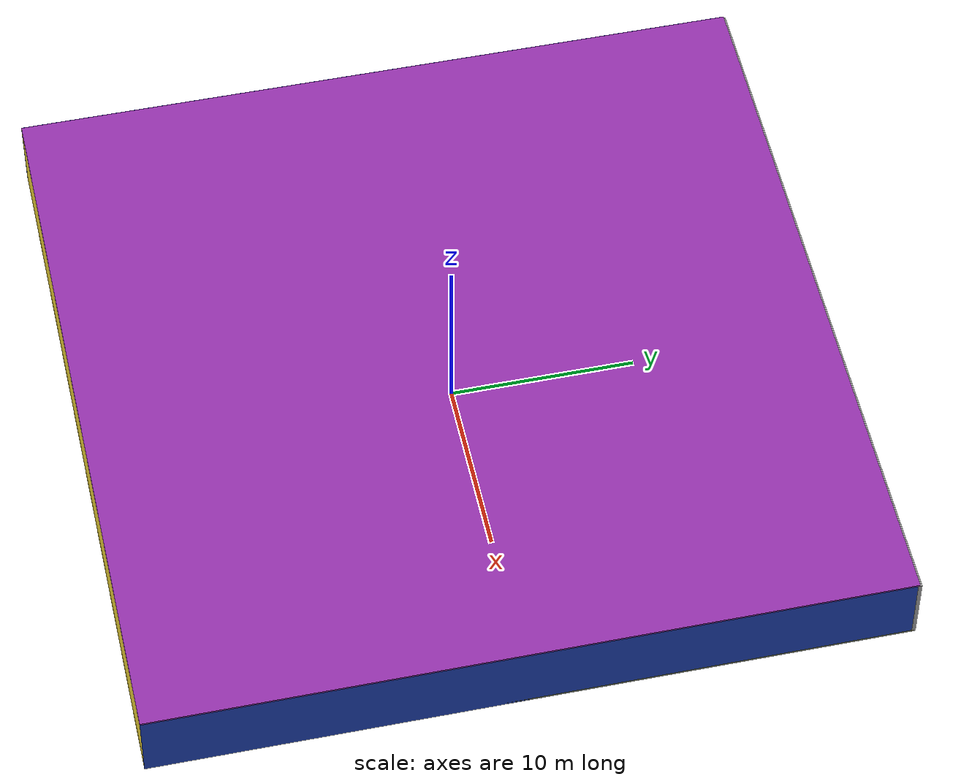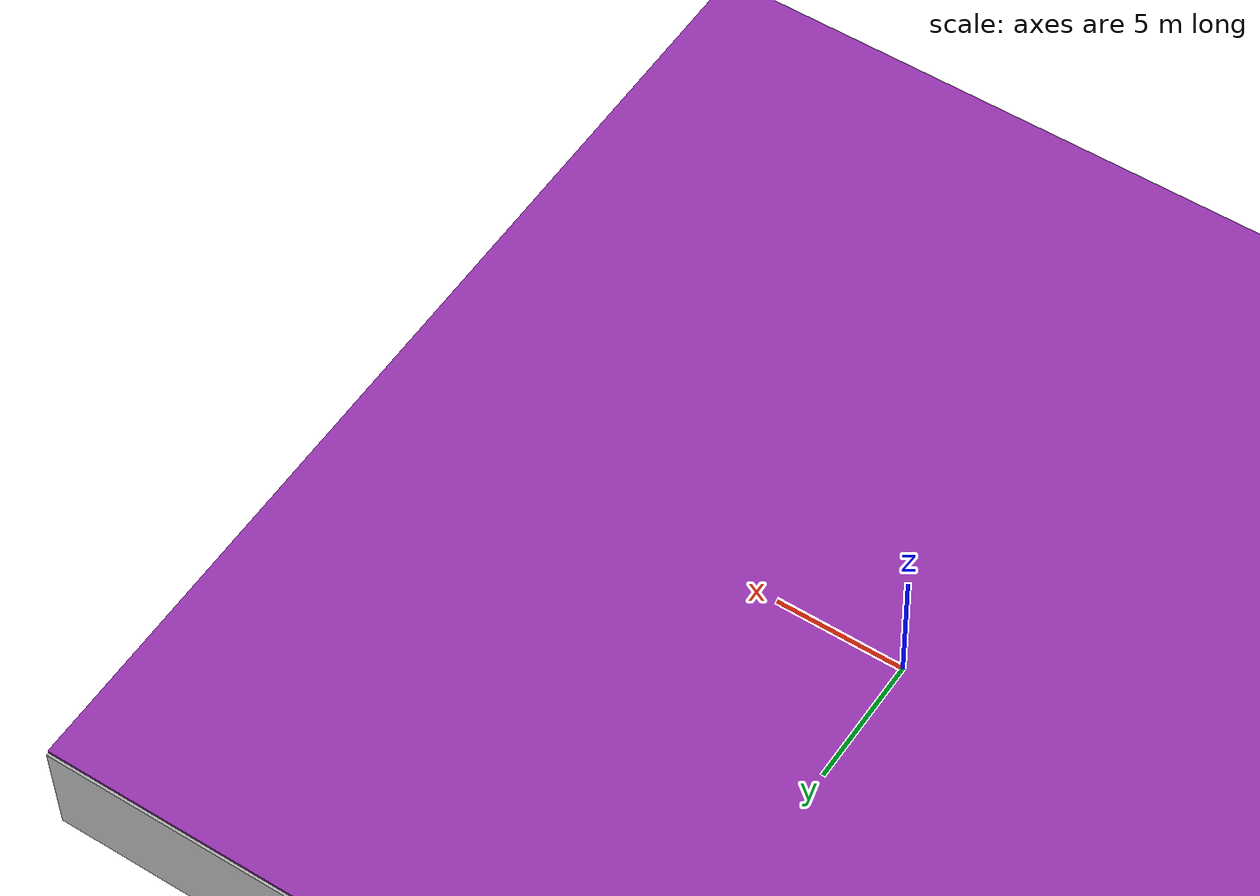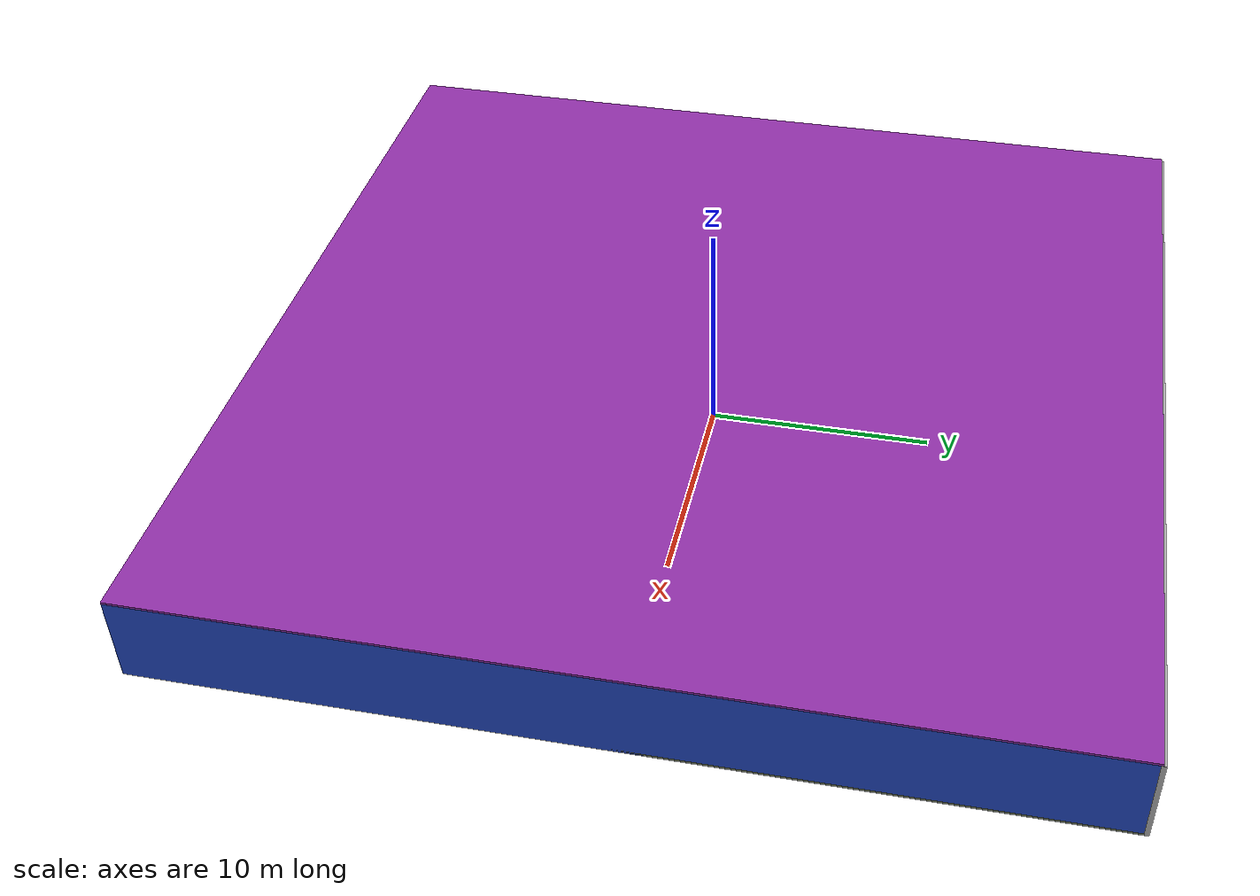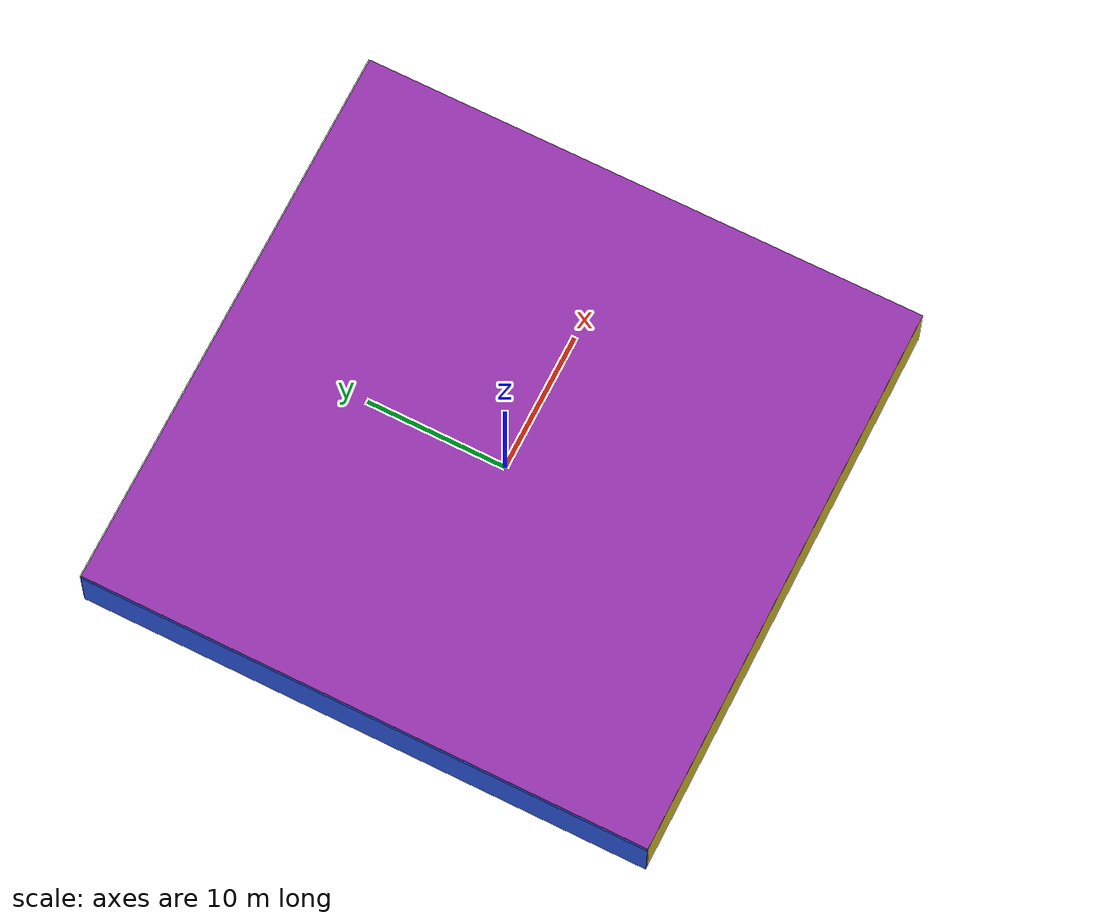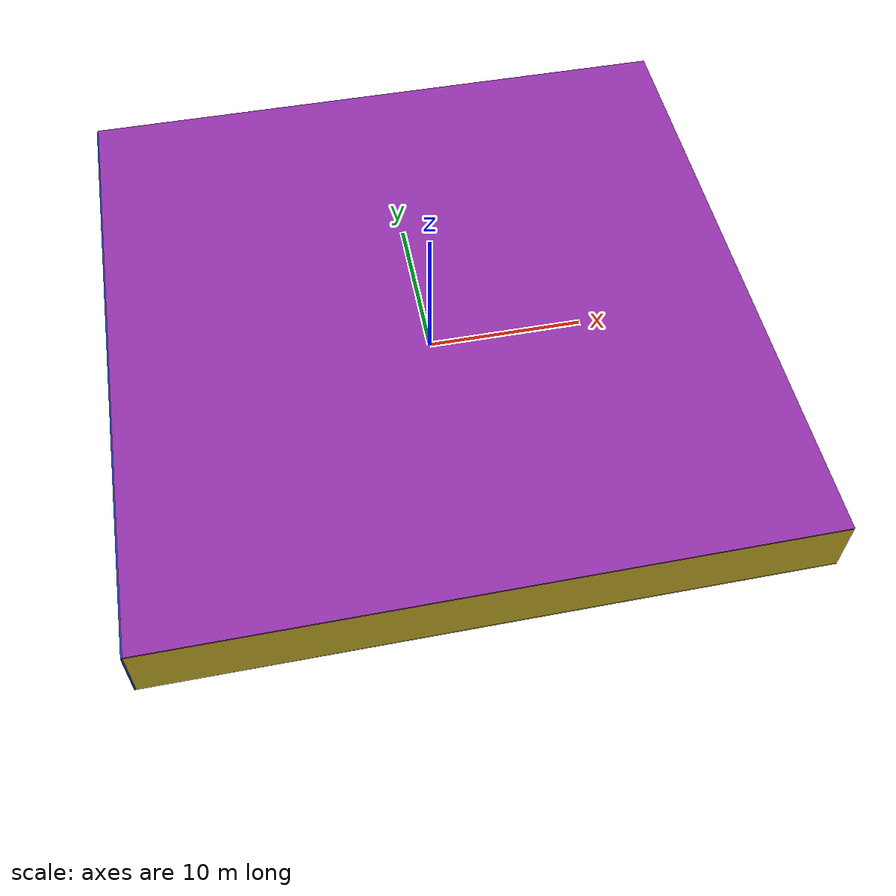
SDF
<sdf version="1.4">
 <world name="default">
  <physics type="ode">
   <max_step_size>0.001</max_step_size>
   <real_time_factor>1</real_time_factor>
   <real_time_update_rate>1000</real_time_update_rate>
   <gravity>0 0 -9.8</gravity>
  </physics>
  <scene><ambient>0.4 0.4 0.4 1</ambient><background>0.7 0.7 0.7 1</background><shadows>1</shadows></scene>
  <model name="Surrounding">
   <static>1</static>
   <link name="Ceiling">
    <collision name="Ceiling_Collision"><geometry><box><size>40 40 0.1</size></box></geometry></collision>
    <visual name="Ceiling_Visual">
     <geometry><box><size>40 40 0.1</size></box></geometry>
     <material>
      <script><uri>file://media/materials/scripts/gazebo.material</uri><name>Gazebo/Purple</name></script>
     </material>
    </visual>
    <pose>0 0 4.05 0 0 0</pose>
   </link>
   <link name="Wall_South">
    <collision name="Wall_South_Collision">
     <geometry><box><size>40 0 4</size></box></geometry>
     <pose>0 0 2 0 -0 0</pose>
    </collision>
    <visual name="Wall_South_Visual">
     <pose>0 0 2 0 -0 0</pose>
     <geometry><box><size>40 0 4</size></box></geometry>
     <material>
      <script><uri>file://media/materials/scripts/gazebo.material</uri><name>Gazebo/ZincYellow</name></script>
     </material>
    </visual>
    <velocity_decay><linear>0</linear><angular>0</angular></velocity_decay>
    <pose>0 -20 0 0 -0 0</pose>
   </link>
   <link name="Wall_East">
    <collision name="Wall_21_Collision">
     <geometry><box><size>40 0 4</size></box></geometry>
     <pose>0 0 2 0 -0 0</pose>
    </collision>
    <visual name="Wall_21_Visual">
     <pose>0 0 2 0 -0 0</pose>
     <geometry><box><size>40 0 4</size></box></geometry>
     <material>
      <script><uri>file://media/materials/scripts/gazebo.material</uri><name>Gazebo/BlueLaser</name></script>
     </material>
    </visual>
    <velocity_decay><linear>0</linear><angular>0</angular></velocity_decay>
    <pose>20 0 0 0 -0 1.5708</pose>
   </link>
   <link name="Wall_North">
    <collision name="Wall_22_Collision">
     <geometry><box><size>40 0.2 4</size></box></geometry>
     <pose>0 0 2 0 -0 0</pose>
    </collision>
    <visual name="Wall_22_Visual">
     <pose>0 0 2 0 -0 0</pose>
     <geometry><box><size>40 0.2 4</size></box></geometry>
     <material>
      <script><uri>file://media/materials/scripts/gazebo.material</uri><name>Gazebo/LightOn</name></script>
     </material>
    </visual>
    <velocity_decay><linear>0</linear><angular>0</angular></velocity_decay>
    <pose>0 20 0 0 -0 0</pose>
   </link>
   <link name="Wall_West">
    <collision name="Wall_23_Collision">
     <geometry><box><size>40 0.2 4</size></box></geometry>
     <pose>0 0 2 0 -0 0</pose>
    </collision>
    <visual name="Wall_23_Visual">
     <pose>0 0 2 0 -0 0</pose>
     <geometry><box><size>40 0.2 4</size></box></geometry>
     <material>
      <script><uri>file://media/materials/scripts/gazebo.material</uri><name>Gazebo/BlueLaser</name></script>
     </material>
    </visual>
    <velocity_decay><linear>0</linear><angular>0</angular></velocity_decay>
    <pose>-20 0 0 0 0 -1.5708</pose>
   </link>
   <link name="Ground_link">
    <collision name="collision">
     <pose>0 0 .05 0 -0 0</pose>
     <geometry><box><size>40 40 0.1</size></box></geometry>
    </collision>
    <visual name="visual">
     <pose>0 0 .05 0 -0 0</pose>
     <geometry><box><size>40 40 0.1</size></box></geometry>
     <material>
      <script>
       <uri>file://media/materials/scripts/gazebo.material</uri>
       <name>Gazebo/YellowTransparent</name>
      </script>
     </material>
    </visual>
   </link>
   <static>1</static>
  </model>
  <spherical_coordinates>
   <surface_model>EARTH_WGS84</surface_model>
   <latitude_deg>0</latitude_deg>
   <longitude_deg>0</longitude_deg>
   <elevation>0</elevation>
   <heading_deg>0</heading_deg>
  </spherical_coordinates>
  <light name="lightball_0" type="diffuse">
   <diffuse>0.8 0.8 0.8 1</diffuse>
   <specular>0.2 0.2 0.2 1</specular>
   <attenuation>
    <range>100</range>
    <constant>0.7</constant>
    <linear>0.01</linear>
    <quadratic>0.001</quadratic>
   </attenuation>
   <direction>-0.5 0.1 -0.9</direction>
   <pose>-15.8205296285 7.40302170666 0.757369584554 0 0 0</pose>
  </light>
  <light name="lightball_1" type="diffuse">
   <diffuse>0.8 0.8 0.8 1</diffuse>
   <specular>0.2 0.2 0.2 1</specular>
   <attenuation>
    <range>100</range>
    <constant>0.7</constant>
    <linear>0.01</linear>
    <quadratic>0.001</quadratic>
   </attenuation>
   <direction>-0.5 0.1 -0.9</direction>
   <pose>-1.97834517789 -16.0557437069 2.88319701101 0 0 0</pose>
  </light>
  <light name="lightball_2" type="diffuse">
   <diffuse>0.8 0.8 0.8 1</diffuse>
   <specular>0.2 0.2 0.2 1</specular>
   <attenuation>
    <range>100</range>
    <constant>0.7</constant>
    <linear>0.01</linear>
    <quadratic>0.001</quadratic>
   </attenuation>
   <direction>-0.5 0.1 -0.9</direction>
   <pose>-14.4424021543 -14.4499914657 1.65151697792 0 0 0</pose>
  </light>
  <light name="lightball_3" type="diffuse">
   <diffuse>0.8 0.8 0.8 1</diffuse>
   <specular>0.2 0.2 0.2 1</specular>
   <attenuation>
    <range>100</range>
    <constant>0.7</constant>
    <linear>0.01</linear>
    <quadratic>0.001</quadratic>
   </attenuation>
   <direction>-0.5 0.1 -0.9</direction>
   <pose>2.07371877605 -18.1946482795 1.10240455037 0 0 0</pose>
  </light>
  <light name="lightball_4" type="diffuse">
   <diffuse>0.8 0.8 0.8 1</diffuse>
   <specular>0.2 0.2 0.2 1</specular>
   <attenuation>
    <range>100</range>
    <constant>0.7</constant>
    <linear>0.01</linear>
    <quadratic>0.001</quadratic>
   </attenuation>
   <direction>-0.5 0.1 -0.9</direction>
   <pose>-16.0106987629 16.9088194048 3.81535931157 0 0 0</pose>
  </light>
  <light name="lightball_5" type="diffuse">
   <diffuse>0.8 0.8 0.8 1</diffuse>
   <specular>0.2 0.2 0.2 1</specular>
   <attenuation>
    <range>100</range>
    <constant>0.7</constant>
    <linear>0.01</linear>
    <quadratic>0.001</quadratic>
   </attenuation>
   <direction>-0.5 0.1 -0.9</direction>
   <pose>-13.7945715252 11.71236386 3.49228452634 0 0 0</pose>
  </light>
  <light name="lightball_6" type="diffuse">
   <diffuse>0.8 0.8 0.8 1</diffuse>
   <specular>0.2 0.2 0.2 1</specular>
   <attenuation>
    <range>100</range>
    <constant>0.7</constant>
    <linear>0.01</linear>
    <quadratic>0.001</quadratic>
   </attenuation>
   <direction>-0.5 0.1 -0.9</direction>
   <pose>2.67752669221 -3.95009534975 0.846644743017 0 0 0</pose>
  </light>
  <light name="lightball_7" type="diffuse">
   <diffuse>0.8 0.8 0.8 1</diffuse>
   <specular>0.2 0.2 0.2 1</specular>
   <attenuation>
    <range>100</range>
    <constant>0.7</constant>
    <linear>0.01</linear>
    <quadratic>0.001</quadratic>
   </attenuation>
   <direction>-0.5 0.1 -0.9</direction>
   <pose>-2.86410784038 6.77080824895 1.07418452153 0 0 0</pose>
  </light>
  <light name="lightball_8" type="diffuse">
   <diffuse>0.8 0.8 0.8 1</diffuse>
   <specular>0.2 0.2 0.2 1</specular>
   <attenuation>
    <range>100</range>
    <constant>0.7</constant>
    <linear>0.01</linear>
    <quadratic>0.001</quadratic>
   </attenuation>
   <direction>-0.5 0.1 -0.9</direction>
   <pose>1.04417290828 -4.42515530162 2.93966520703 0 0 0</pose>
  </light>
  <light name="lightball_9" type="diffuse">
   <diffuse>0.8 0.8 0.8 1</diffuse>
   <specular>0.2 0.2 0.2 1</specular>
   <attenuation>
    <range>100</range>
    <constant>0.7</constant>
    <linear>0.01</linear>
    <quadratic>0.001</quadratic>
   </attenuation>
   <direction>-0.5 0.1 -0.9</direction>
   <pose>10.4236885915 -1.26468183879 1.26072619675 0 0 0</pose>
  </light>
  <light name="lightball_10" type="diffuse">
   <diffuse>0.8 0.8 0.8 1</diffuse>
   <specular>0.2 0.2 0.2 1</specular>
   <attenuation>
    <range>100</range>
    <constant>0.7</constant>
    <linear>0.01</linear>
    <quadratic>0.001</quadratic>
   </attenuation>
   <direction>-0.5 0.1 -0.9</direction>
   <pose>19.2813140259 0.742159672836 1.25641659787 0 0 0</pose>
  </light>
  <include><uri>model://cabinet</uri><pose>-17.6906147061 -16.8979719614 0 0 0 0.942663287437</pose></include>
  <include><uri>model://cabinet</uri><pose>-16.7983671622 -12.3515671711 0 0 0 1.95574649644</pose></include>
  <include><uri>model://cabinet</uri><pose>-17.4840316533 -5.83443377669 0 0 0 2.57910044063</pose></include>
  <include>
   <uri>model://construction_cone</uri>
   <pose>-16.3841807273 9.18551328219 0 0 0 0.81823850054</pose>
  </include>
  <include><uri>model://cabinet</uri><pose>-13.5799885665 -7.32660387017 0 0 0 2.61772977733</pose></include>
  <include><uri>model://table</uri><pose>-13.3985855516 7.0379470766 0 0 0 1.15747402776</pose></include>
  <include>
   <uri>model://robocup_3Dsim_goal</uri>
   <pose>-10.8522150466 1.47142371922 0 0 0 2.6643015663</pose>
  </include>
  <include><uri>model://table</uri><pose>-10.3748936283 7.55082273279 0 0 0 0.607973010125</pose></include>
  <include>
   <uri>model://construction_cone</uri>
   <pose>-8.00571311973 -13.7141307986 0 0 0 0.522702292823</pose>
  </include>
  <include><uri>model://table</uri><pose>-8.3660652554 -10.9718075077 0 0 0 2.76123110088</pose></include>
  <include><uri>model://cabinet</uri><pose>-6.58140440371 -10.9055042464 0 0 0 3.05827100831</pose></include>
  <include>
   <uri>model://robocup_3Dsim_goal</uri>
   <pose>-6.05554339621 12.5567247095 0 0 0 0.511349018198</pose>
  </include>
  <include>
   <uri>model://construction_cone</uri>
   <pose>-3.00386693438 -1.49687291046 0 0 0 2.75297242035</pose>
  </include>
  <include><uri>model://cabinet</uri><pose>-2.99383694981 13.4962796692 0 0 0 2.03563515937</pose></include>
  <include><uri>model://table</uri><pose>-1.56858018177 17.360543808 0 0 0 0.704669956197</pose></include>
  <include><uri>model://cabinet</uri><pose>1.41574608167 17.3413924115 0 0 0 0.600899091688</pose></include>
  <include><uri>model://table</uri><pose>2.71275204493 -12.0054712692 0 0 0 1.54433823152</pose></include>
  <include><uri>model://table</uri><pose>3.89675576112 3.6164187541 0 0 0 1.77814168407</pose></include>
  <include>
   <uri>model://construction_cone</uri>
   <pose>5.42516744258 -15.2048105154 0 0 0 1.43995751316</pose>
  </include>
  <include>
   <uri>model://robocup_3Dsim_goal</uri>
   <pose>5.5050203172 -10.8042762699 0 0 0 0.798086020673</pose>
  </include>
  <include><uri>model://table</uri><pose>7.54646288372 9.03468675274 0 0 0 0.766225353156</pose></include>
  <include>
   <uri>model://construction_cone</uri>
   <pose>10.632898201 -12.054757003 0 0 0 0.402564074473</pose>
  </include>
  <include>
   <uri>model://robocup_3Dsim_goal</uri>
   <pose>9.51451187725 -2.60023385847 0 0 0 0.392163031181</pose>
  </include>
  <include><uri>model://cabinet</uri><pose>10.5170679109 7.60908174507 0 0 0 2.57366828434</pose></include>
  <include><uri>model://table</uri><pose>12.5731596288 -6.36863099903 0 0 0 1.34115179311</pose></include>
  <include>
   <uri>model://robocup_3Dsim_goal</uri>
   <pose>11.5519284684 0.0573767070354 0 0 0 1.7047962884</pose>
  </include>
  <include>
   <uri>model://textured_shapes</uri>
   <pose>13.3594484757 15.3624447328 0 0 0 2.64238901654</pose>
  </include>
  <include>
   <uri>model://construction_cone</uri>
   <pose>17.8162294422 -18.0989888655 0 0 0 2.12029743826</pose>
  </include>
  <include>
   <uri>model://construction_cone</uri>
   <pose>18.6670472392 10.0021618172 0 0 0 1.78758275675</pose>
  </include>
  <include>
   <uri>model://construction_cone</uri>
   <pose>17.5168053276 11.5618649781 0 0 0 3.02767687282</pose>
  </include>
  <include><uri>model://cabinet</uri><pose>18.839757342 19.168447981 0 0 0 1.72342996921</pose></include>
 </world>
</sdf>

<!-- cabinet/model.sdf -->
<sdf version="1.5">
  <model name="cabinet">
    <static>true</static>
    <link name="cabinet_bottom_plate">
      <inertial>
        <pose>0 0 -1 0 0 0</pose>
        <inertia>
          <ixx>2.050000</ixx>
          <ixy>0</ixy>
          <ixz>0</ixz>
          <iyy>2.050000</iyy>
          <iyz>0</iyz>
          <izz>2.050000</izz>
        </inertia>
        <mass>25.000000</mass>
      </inertial>
      <collision name="cabinet_bottom_plate_geom">
        <pose>0 0 0.010000 0 0 0</pose>
        <geometry>
          <box>
            <size>0.450000 0.450000 0.020000</size>
          </box>
        </geometry>
      </collision>
      <visual name="cabinet_bottom_plate_geom_visual">
        <pose>0 0 0.010000 0 0 0</pose>
        <geometry>
          <box>
            <size>0.450000 0.450000 0.020000</size>
          </box>
        </geometry>
        <material>
          <script>
            <uri>model://media/materials/scripts/gazebo.material</uri>
            <name>Gazebo/Wood</name>
          </script>
        </material>
      </visual>
      <collision name="cabinet_bottom_plate_geom_cabinet_back_plate">
        <pose>0.235000 0 0.510000 0 0 0</pose>
        <geometry>
          <box>
            <size>0.020000 0.450000 1.020000</size>
          </box>
        </geometry>
      </collision>
      <visual name="cabinet_bottom_plate_geom_cabinet_back_plate_visual">
        <pose>0.235000 0 0.510000 0 0 0</pose>
        <geometry>
          <box>
            <size>0.020000 0.450000 1.020000</size>
          </box>
        </geometry>
        <material>
          <script>
            <uri>model://media/materials/scripts/gazebo.material</uri>
            <name>Gazebo/Wood</name>
          </script>
        </material>
      </visual>
      <collision name="cabinet_bottom_plate_geom_cabinet_left_plate">
        <pose>0 0.235000 0.510000 0 0 0</pose>
        <geometry>
          <box>
            <size>0.450000 0.020000 1.020000</size>
          </box>
        </geometry>
      </collision>
      <visual name="cabinet_bottom_plate_geom_cabinet_left_plate_visual">
        <pose>0 0.235000 0.510000 0 0 0</pose>
        <geometry>
          <box>
            <size>0.450000 0.020000 1.020000</size>
          </box>
        </geometry>
        <material>
          <script>
            <uri>model://media/materials/scripts/gazebo.material</uri>
            <name>Gazebo/Wood</name>
          </script>
        </material>
      </visual>
      <collision name="cabinet_bottom_plate_geom_cabinet_middle_plate">
        <pose>0 0 0.510000 0 0 0</pose>
        <geometry>
          <box>
            <size>0.450000 0.450000 0.020000</size>
          </box>
        </geometry>
      </collision>
      <visual name="cabinet_bottom_plate_geom_cabinet_middle_plate_visual">
        <pose>0 0 0.510000 0 0 0</pose>
        <geometry>
          <box>
            <size>0.450000 0.450000 0.020000</size>
          </box>
        </geometry>
        <material>
          <script>
            <uri>model://media/materials/scripts/gazebo.material</uri>
            <name>Gazebo/Wood</name>
          </script>
        </material>
      </visual>
      <collision name="cabinet_bottom_plate_geom_cabinet_right_plate">
        <pose>0 -0.235000 0.510000 0 0 0</pose>
        <geometry>
          <box>
            <size>0.450000 0.020000 1.020000</size>
          </box>
        </geometry>
      </collision>
      <visual name="cabinet_bottom_plate_geom_cabinet_right_plate_visual">
        <pose>0 -0.235000 0.510000 0 0 0</pose>
        <geometry>
          <box>
            <size>0.450000 0.020000 1.020000</size>
          </box>
        </geometry>
        <material>
          <script>
            <uri>model://media/materials/scripts/gazebo.material</uri>
            <name>Gazebo/Wood</name>
          </script>
        </material>
      </visual>
      <collision name="cabinet_bottom_plate_geom_cabinet_top_plate">
        <pose>0 0 1.010000 0 0 0</pose>
        <geometry>
          <box>
            <size>0.450000 0.450000 0.020000</size>
          </box>
        </geometry>
      </collision>
      <visual name="cabinet_bottom_plate_geom_cabinet_top_plate_visual">
        <pose>0 0 1.010000 0 0 0</pose>
        <geometry>
          <box>
            <size>0.450000 0.450000 0.020000</size>
          </box>
        </geometry>
        <material>
          <script>
            <uri>model://media/materials/scripts/gazebo.material</uri>
            <name>Gazebo/Wood</name>
          </script>
        </material>
      </visual>
    </link>
  </model>
</sdf>

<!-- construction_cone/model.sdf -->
<sdf version="1.5">
  <model name="Construction Cone">
    <link name="link">
      <collision name="collision">
        <geometry>
          <mesh>
            <scale>10 10 10</scale>
            <uri>file://isr-testbed/construction_cone/meshes/construction_cone.dae</uri>
          </mesh>
        </geometry>
      </collision>
      <visual name="visual">
        <geometry>
          <mesh>
            <scale>10 10 10</scale>
            <uri>file://isr-testbed/construction_cone/meshes/construction_cone.dae</uri>
          </mesh>
        </geometry>
      </visual>
    </link>
  </model>
</sdf>

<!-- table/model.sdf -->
<sdf version="1.5">
  <model name="table">
    <static>true</static>
    <link name="link">
      <collision name="surface">
        <pose>0 0 1.0 0 0 0</pose>
        <geometry>
          <box>
            <size>1.5 0.8 0.03</size>
          </box>
        </geometry>
        <surface>
          <friction>
            <ode>
              <mu>0.6</mu>
              <mu2>0.6</mu2>
            </ode>
          </friction>
        </surface>
      </collision>
      <visual name="visual1">
        <pose>0 0 1.0 0 0 0</pose>
        <geometry>
          <box>
            <size>1.5 0.8 0.03</size>
          </box>
        </geometry>
        <material>
          <script>
            <uri>model://media/materials/scripts/gazebo.material</uri>
            <name>Gazebo/Wood</name>
          </script>
        </material>
      </visual>
      <collision name="front_left_leg">
        <pose>0.68 0.38 0.5 0 0 0</pose>
        <geometry>
          <cylinder>
            <radius>0.02</radius>
            <length>1.0</length>
          </cylinder>
        </geometry>
      </collision>
      <visual name="front_left_leg">
        <pose>0.68 0.38 0.5 0 0 0</pose>
        <geometry>
          <cylinder>
            <radius>0.02</radius>
            <length>1.0</length>
          </cylinder>
        </geometry>
        <material>
          <script>
            <uri>model://media/materials/scripts/gazebo.material</uri>
            <name>Gazebo/Grey</name>
          </script>
        </material>
      </visual>
      <collision name="front_right_leg">
        <pose>0.68 -0.38 0.5 0 0 0</pose>
        <geometry>
          <cylinder>
            <radius>0.02</radius>
            <length>1.0</length>
          </cylinder>
        </geometry>
      </collision>
      <visual name="front_right_leg">
        <pose>0.68 -0.38 0.5 0 0 0</pose>
        <geometry>
          <cylinder>
            <radius>0.02</radius>
            <length>1.0</length>
          </cylinder>
        </geometry>
        <material>
          <script>
            <uri>model://media/materials/scripts/gazebo.material</uri>
            <name>Gazebo/Grey</name>
          </script>
        </material>
      </visual>
      <collision name="back_right_leg">
        <pose>-0.68 -0.38 0.5 0 0 0</pose>
        <geometry>
          <cylinder>
            <radius>0.02</radius>
            <length>1.0</length>
          </cylinder>
        </geometry>
      </collision>
      <visual name="back_right_leg">
        <pose>-0.68 -0.38 0.5 0 0 0</pose>
        <geometry>
          <cylinder>
            <radius>0.02</radius>
            <length>1.0</length>
          </cylinder>
        </geometry>
        <material>
          <script>
            <uri>model://media/materials/scripts/gazebo.material</uri>
            <name>Gazebo/Grey</name>
          </script>
        </material>
      </visual>
      <collision name="back_left_leg">
        <pose>-0.68 0.38 0.5 0 0 0</pose>
        <geometry>
          <cylinder>
            <radius>0.02</radius>
            <length>1.0</length>
          </cylinder>
        </geometry>
      </collision>
      <visual name="back_left_leg">
        <pose>-0.68 0.38 0.5 0 0 0</pose>
        <geometry>
          <cylinder>
            <radius>0.02</radius>
            <length>1.0</length>
          </cylinder>
        </geometry>
        <material>
          <script>
            <uri>model://media/materials/scripts/gazebo.material</uri>
            <name>Gazebo/Grey</name>
          </script>
        </material>
      </visual>
    </link>
  </model>
</sdf>

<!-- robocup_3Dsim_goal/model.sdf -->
<sdf version="1.5">
  <model name="robocup_3d_goal">
    <static>true</static>
    <link name="left_post">
      <pose>0 1.05 0.45 0 0 0</pose>
      <collision name="collision">
        <geometry>
          <cylinder>
            <radius>0.05</radius>
            <length>0.9</length>
          </cylinder>
        </geometry>
      </collision>
      <visual name="visual">
        <geometry>
          <cylinder>
            <radius>0.05</radius>
            <length>0.9</length>
          </cylinder>
        </geometry>
        <material>
          <script>
            <uri>file://media/materials/scripts/gazebo.material</uri>
            <name>Gazebo/ZincYellow</name>
          </script>
        </material>
      </visual>
    </link>
    <link name="left_support_horiz_lower">
      <pose>0.30 1.05 0.01 0 0 0</pose>
      <collision name="collision">
        <geometry>
          <box>
            <size>0.50 0.02 0.02</size>
          </box>
        </geometry>
      </collision>
      <visual name="visual">
        <geometry>
          <box>
            <size>0.50 0.02 0.02</size>
          </box>
        </geometry>
        <material>
          <script>
            <uri>file://media/materials/scripts/gazebo.material</uri>
            <name>Gazebo/White</name>
          </script>
        </material>
      </visual>
    </link>
    <link name="left_support_horiz_upper">
      <pose>0.30 1.05 0.79 0 0 0</pose>
      <collision name="collision">
        <geometry>
          <box>
            <size>0.50 0.02 0.02</size>
          </box>
        </geometry>
      </collision>
      <visual name="visual">
        <geometry>
          <box>
            <size>0.50 0.02 0.02</size>
          </box>
        </geometry>
        <material>
          <script>
            <uri>file://media/materials/scripts/gazebo.material</uri>
            <name>Gazebo/White</name>
          </script>
        </material>
      </visual>
    </link>
    <link name="left_support_vertical">
      <pose>0.56 1.05 0.4 0 1.5708 0</pose>
      <collision name="collision">
        <geometry>
          <box>
            <size>0.80 0.02 0.02</size>
          </box>
        </geometry>
      </collision>
      <visual name="visual">
        <geometry>
          <box>
            <size>0.80 0.02 0.02</size>
          </box>
        </geometry>
        <material>
          <script>
            <uri>file://media/materials/scripts/gazebo.material</uri>
            <name>Gazebo/White</name>
          </script>
        </material>
      </visual>
    </link>
    <link name="right_support_horiz_lower">
      <pose>0.30 -1.05 0.01 0 0 0</pose>
      <collision name="collision">
        <geometry>
          <box>
            <size>0.50 0.02 0.02</size>
          </box>
        </geometry>
      </collision>
      <visual name="visual">
        <geometry>
          <box>
            <size>0.50 0.02 0.02</size>
          </box>
        </geometry>
        <material>
          <script>
            <uri>file://media/materials/scripts/gazebo.material</uri>
            <name>Gazebo/White</name>
          </script>
        </material>
      </visual>
    </link>
    <link name="right_support_horiz_upper">
      <pose>0.30 -1.05 0.79 0 0 0</pose>
      <collision name="collision">
        <geometry>
          <box>
            <size>0.50 0.02 0.02</size>
          </box>
        </geometry>
      </collision>
      <visual name="visual">
        <geometry>
          <box>
            <size>0.50 0.02 0.02</size>
          </box>
        </geometry>
        <material>
          <script>
            <uri>file://media/materials/scripts/gazebo.material</uri>
            <name>Gazebo/White</name>
          </script>
        </material>
      </visual>
    </link>
    <link name="right_support_vertical">
      <pose>0.56 -1.05 0.4 0 1.5708 0</pose>
      <collision name="collision">
        <geometry>
          <box>
            <size>0.80 0.02 0.02</size>
          </box>
        </geometry>
      </collision>
      <visual name="visual">
        <geometry>
          <box>
            <size>0.80 0.02 0.02</size>
          </box>
        </geometry>
        <material>
          <script>
            <uri>file://media/materials/scripts/gazebo.material</uri>
            <name>Gazebo/White</name>
          </script>
        </material>
      </visual>
    </link>
    <link name="center_support_horiz_lower">
      <pose>0.56 0 0.01 0 1.5708 0</pose>
      <collision name="collision">
        <geometry>
          <box>
            <size>0.02 2.08 0.02</size>
          </box>
        </geometry>
      </collision>
      <visual name="visual">
        <geometry>
          <box>
            <size>0.02 2.08 0.02</size>
          </box>
        </geometry>
        <material>
          <script>
            <uri>file://media/materials/scripts/gazebo.material</uri>
            <name>Gazebo/White</name>
          </script>
        </material>
      </visual>
    </link>
    <link name="center_support_horiz_upper">
      <pose>0.56 0 0.79 0 1.5708 0</pose>
      <collision name="collision">
        <geometry>
          <box>
            <size>0.02 2.08 0.02</size>
          </box>
        </geometry>
      </collision>
      <visual name="visual">
        <geometry>
          <box>
            <size>0.02 2.08 0.02</size>
          </box>
        </geometry>
        <material>
          <script>
            <uri>file://media/materials/scripts/gazebo.material</uri>
            <name>Gazebo/White</name>
          </script>
        </material>
      </visual>
    </link>
    <link name="right_post">
      <pose>0 -1.05 0.45 0 0 0</pose>
      <collision name="collision">
        <geometry>
          <cylinder>
            <radius>0.05</radius>
            <length>0.9</length>
          </cylinder>
        </geometry>
      </collision>
      <visual name="visual">
        <geometry>
          <cylinder>
            <radius>0.05</radius>
            <length>0.9</length>
          </cylinder>
        </geometry>
        <material>
          <script>
            <uri>file://media/materials/scripts/gazebo.material</uri>
            <name>Gazebo/ZincYellow</name>
          </script>
        </material>
      </visual>
    </link>
    <link name="crossbar">
      <pose>0 0 0.85 1.57 1.57 0</pose>
      <collision name="collision">
        <geometry>
          <cylinder>
            <radius>0.05</radius>
            <length>2.0</length>
          </cylinder>
        </geometry>
      </collision>
      <visual name="visual">
        <geometry>
          <cylinder>
            <radius>0.05</radius>
            <length>2.0</length>
          </cylinder>
        </geometry>
        <material>
          <script>
            <uri>file://media/materials/scripts/gazebo.material</uri>
            <name>Gazebo/ZincYellow</name>
          </script>
        </material>
      </visual>
    </link>
    <link name="center_net">
      <pose>0.56 0 0.40 0 0 0</pose>
      <collision name="collision">
        <geometry>
          <box>
            <size>0.01 2.1 0.80</size>
          </box>
        </geometry>
      </collision>
      <visual name="visual">
        <geometry>
          <box>
            <size>0.01 2.1 0.80</size>
          </box>
        </geometry>
        <material>
          <script>
            <uri>model://../model_source/models/robocup09_spl_field/materials/scripts/</uri>
            <uri>model://../model_source/models/robocup09_spl_field/materials/textures/</uri>
            <name>RoboCup/Net</name>
          </script>
        </material>
      </visual>
    </link>
    <link name="left_net">
      <pose>0.30 1.05 0.40 0 0 0</pose>
      <collision name="collision">
        <geometry>
          <box>
            <size>0.50 0.01 0.76</size>
          </box>
        </geometry>
      </collision>
      <visual name="visual">
        <geometry>
          <box>
            <size>0.50 0.01 0.76</size>
          </box>
        </geometry>
        <material>
          <script>
            <uri>model://../model_source/models/robocup09_spl_field/materials/scripts/</uri>
            <uri>model://../model_source/models/robocup09_spl_field/materials/textures/</uri>
            <name>RoboCup/Net</name>
          </script>
        </material>
      </visual>
    </link>
    <link name="right_net">
      <pose>0.30 -1.05 0.40 0 0 0</pose>
      <collision name="collision">
        <geometry>
          <box>
            <size>0.50 0.01 0.76</size>
          </box>
        </geometry>
      </collision>
      <visual name="visual">
        <geometry>
          <box>
            <size>0.50 0.01 0.76</size>
          </box>
        </geometry>
        <material>
          <script>
            <uri>model://../model_source/models/robocup09_spl_field/materials/scripts/</uri>
            <uri>model://../model_source/models/robocup09_spl_field/materials/textures/</uri>
            <name>RoboCup/Net</name>
          </script>
        </material>
      </visual>
    </link>
  </model>
</sdf>

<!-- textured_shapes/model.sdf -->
<sdf version="1.6">
  <model name="textured_shapes">
    <pose>0 0 0.5 0 0 0</pose>
    <link name="box">
      <pose>0 -1.5 0 0 0 0</pose>
      <collision name="collision">
        <geometry>
          <box>
            <size>1 1 1</size>
          </box>
        </geometry>
      </collision>
      <visual name="visual">
        <geometry>
          <box>
            <size>1 1 1</size>
          </box>
        </geometry>
        <material>
          <script>
            <uri>model://../model_source/models/textured_shapes/materials/scripts</uri>
            <uri>model://../model_source/models/textured_shapes/materials/textures</uri>
            <name>TexturedShape/Squares</name>
          </script>
        </material>
      </visual>
    </link>
    <link name="sphere">
      <collision name="collision">
        <geometry>
          <sphere>
            <radius>0.5</radius>
          </sphere>
        </geometry>
      </collision>
      <visual name="visual">
        <geometry>
          <sphere>
            <radius>0.5</radius>
          </sphere>
        </geometry>
        <material>
          <script>
            <uri>model://../model_source/models/textured_shapes/materials/scripts</uri>
            <uri>model://../model_source/models/textured_shapes/materials/textures</uri>
            <name>TexturedShape/Squares</name>
          </script>
        </material>
      </visual>
    </link>
    <link name="cylinder">
      <pose>0 1.5 0 0 0 0</pose>
      <collision name="collision">
        <geometry>
          <cylinder>
            <radius>0.5</radius>
            <length>1</length>
          </cylinder>
        </geometry>
      </collision>
      <visual name="visual">
        <geometry>
          <cylinder>
            <radius>0.5</radius>
            <length>1</length>
          </cylinder>
        </geometry>
        <material>
          <script>
            <uri>model://../model_source/models/textured_shapes/materials/scripts</uri>
            <uri>model://../model_source/models/textured_shapes/materials/textures</uri>
            <name>TexturedShape/Squares</name>
          </script>
        </material>
      </visual>
    </link>
  </model>
</sdf>
